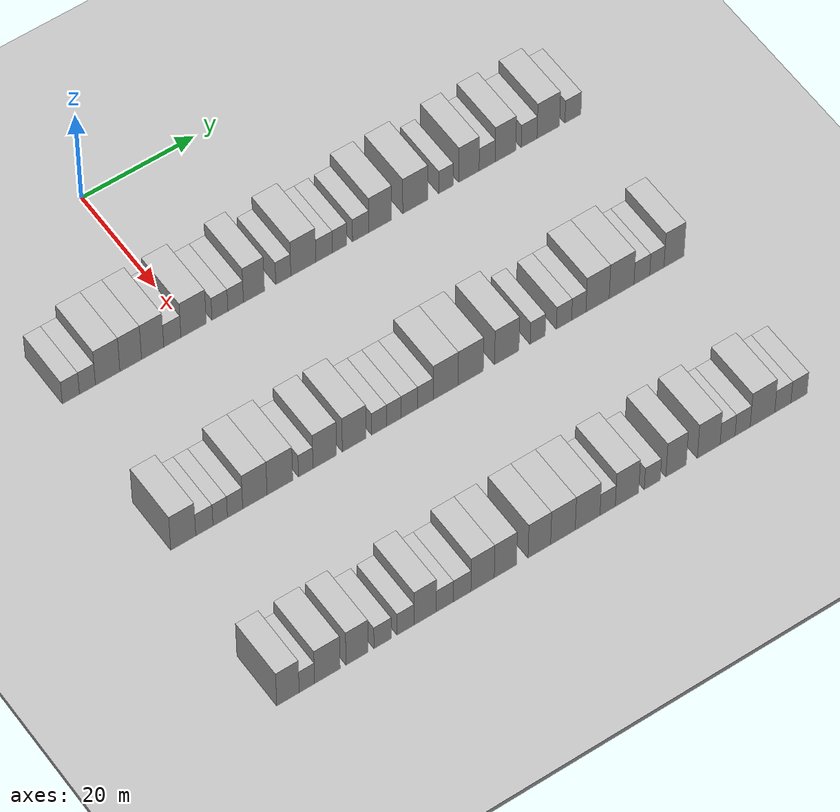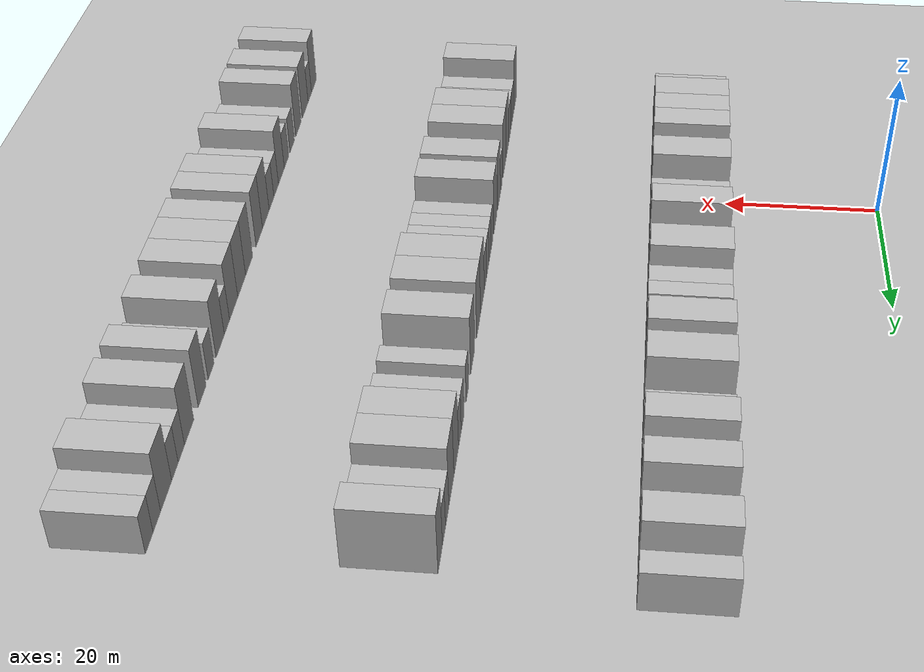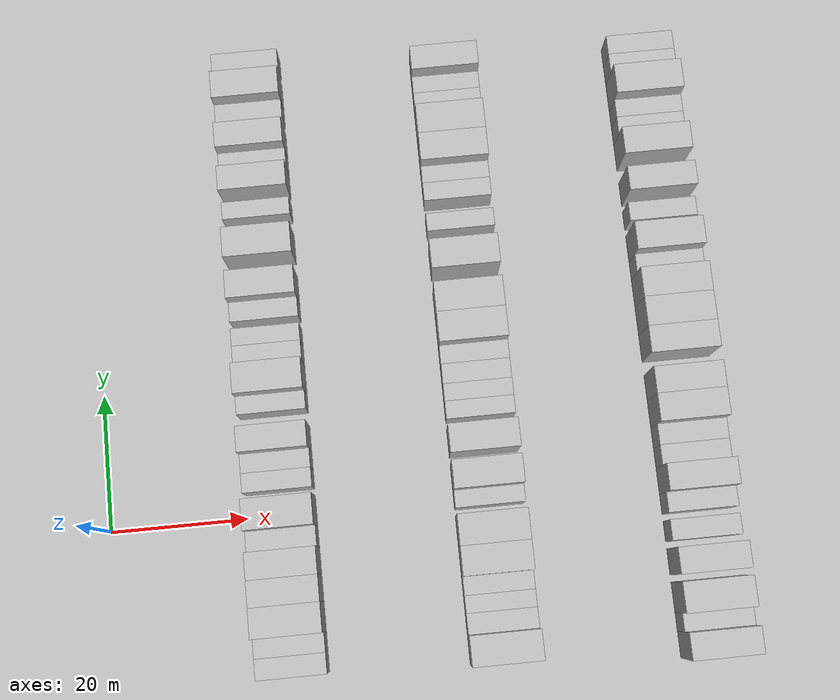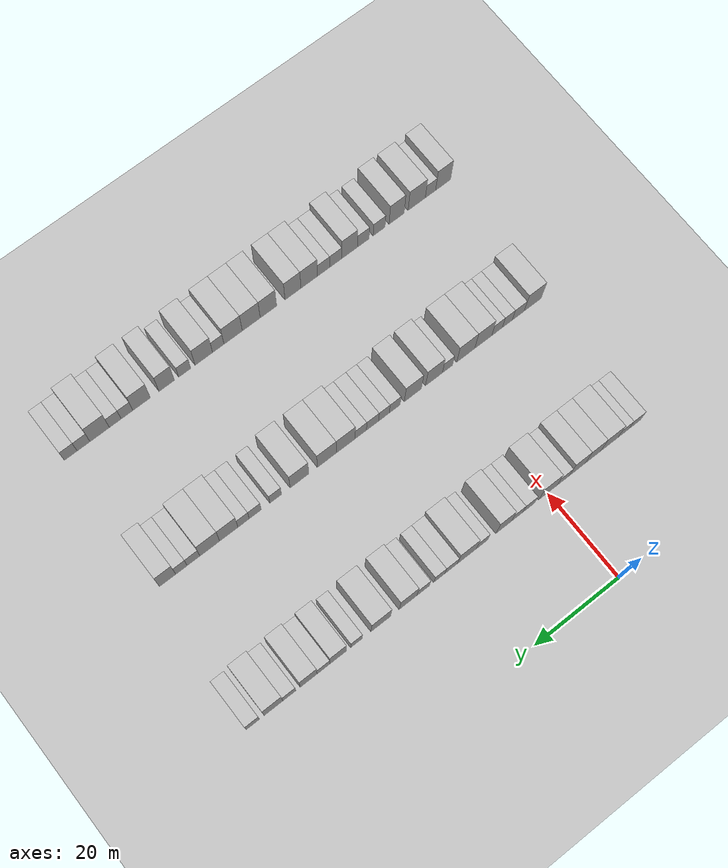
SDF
<sdf version="1.6">
 <world name="default">
  <include><name>ground_plane_1</name><uri>model://HANNAS_ground_plane</uri></include>
  <include>
   <name>ground_plane_2</name>
   <uri>model://HANNAS_ground_plane</uri>
   <pose>100 0 0  0 0 0</pose>
  </include>
  <model name="building_110">
   <static>1</static>
   <pose>25.0000 -21.1894 0 0.000000 0.000000 0.000000</pose>
   <link name="link">
    <pose>0 0 3.00 0 0 0</pose>
    <collision name="collision"><geometry><box><size>10.0000 2.9422 6.0000</size></box></geometry></collision>
    <visual name="visual">
     <cast_shadows>0</cast_shadows>
     <geometry><box><size>10.0000 2.9422 6.0000</size></box></geometry>
     <material>
      <script>
       <uri>model://HANNAS_wall/materials/scripts</uri>
       <uri>model://HANNAS_wall/materials/textures</uri>
       <name>vrc/HANNAS_wall</name>
      </script>
     </material>
    </visual>
   </link>
  </model>
  <model name="building_111">
   <static>1</static>
   <pose>25.0000 -18.3367 0 0.000000 0.000000 0.000000</pose>
   <link name="link">
    <pose>0 0 3.00 0 0 0</pose>
    <collision name="collision"><geometry><box><size>10.0000 2.7631 6.0000</size></box></geometry></collision>
    <visual name="visual">
     <cast_shadows>0</cast_shadows>
     <geometry><box><size>10.0000 2.7631 6.0000</size></box></geometry>
     <material>
      <script>
       <uri>model://HANNAS_wall/materials/scripts</uri>
       <uri>model://HANNAS_wall/materials/textures</uri>
       <name>vrc/HANNAS_wall</name>
      </script>
     </material>
    </visual>
   </link>
  </model>
  <model name="building_112">
   <static>1</static>
   <pose>25.0000 -14.8405 0 0.000000 0.000000 0.000000</pose>
   <link name="link">
    <pose>0 0 4.50 0 0 0</pose>
    <collision name="collision"><geometry><box><size>10.0000 4.2294 9.0000</size></box></geometry></collision>
    <visual name="visual">
     <cast_shadows>0</cast_shadows>
     <geometry><box><size>10.0000 4.2294 9.0000</size></box></geometry>
     <material>
      <script>
       <uri>model://HANNAS_wall/materials/scripts</uri>
       <uri>model://HANNAS_wall/materials/textures</uri>
       <name>vrc/HANNAS_wall</name>
      </script>
     </material>
    </visual>
   </link>
  </model>
  <model name="building_113">
   <static>1</static>
   <pose>25.0000 -10.8490 0 0.000000 0.000000 0.000000</pose>
   <link name="link">
    <pose>0 0 4.50 0 0 0</pose>
    <collision name="collision"><geometry><box><size>10.0000 3.7537 9.0000</size></box></geometry></collision>
    <visual name="visual">
     <cast_shadows>0</cast_shadows>
     <geometry><box><size>10.0000 3.7537 9.0000</size></box></geometry>
     <material>
      <script>
       <uri>model://HANNAS_wall/materials/scripts</uri>
       <uri>model://HANNAS_wall/materials/textures</uri>
       <name>vrc/HANNAS_wall</name>
      </script>
     </material>
    </visual>
   </link>
  </model>
  <model name="building_114">
   <static>1</static>
   <pose>25.0000 -7.0405 0 0.000000 0.000000 0.000000</pose>
   <link name="link">
    <pose>0 0 4.50 0 0 0</pose>
    <collision name="collision"><geometry><box><size>10.0000 3.8632 9.0000</size></box></geometry></collision>
    <visual name="visual">
     <cast_shadows>0</cast_shadows>
     <geometry><box><size>10.0000 3.8632 9.0000</size></box></geometry>
     <material>
      <script>
       <uri>model://HANNAS_wall/materials/scripts</uri>
       <uri>model://HANNAS_wall/materials/textures</uri>
       <name>vrc/HANNAS_wall</name>
      </script>
     </material>
    </visual>
   </link>
  </model>
  <model name="building_115">
   <static>1</static>
   <pose>25.0000 -3.6133 0 0.000000 0.000000 0.000000</pose>
   <link name="link">
    <pose>0 0 3.00 0 0 0</pose>
    <collision name="collision"><geometry><box><size>10.0000 2.9913 6.0000</size></box></geometry></collision>
    <visual name="visual">
     <cast_shadows>0</cast_shadows>
     <geometry><box><size>10.0000 2.9913 6.0000</size></box></geometry>
     <material>
      <script>
       <uri>model://HANNAS_wall/materials/scripts</uri>
       <uri>model://HANNAS_wall/materials/textures</uri>
       <name>vrc/HANNAS_wall</name>
      </script>
     </material>
    </visual>
   </link>
  </model>
  <model name="building_116">
   <static>1</static>
   <pose>25.0000 0.1016 0 0.000000 0.000000 0.000000</pose>
   <link name="link">
    <pose>0 0 4.50 0 0 0</pose>
    <collision name="collision"><geometry><box><size>10.0000 4.4384 9.0000</size></box></geometry></collision>
    <visual name="visual">
     <cast_shadows>0</cast_shadows>
     <geometry><box><size>10.0000 4.4384 9.0000</size></box></geometry>
     <material>
      <script>
       <uri>model://HANNAS_wall/materials/scripts</uri>
       <uri>model://HANNAS_wall/materials/textures</uri>
       <name>vrc/HANNAS_wall</name>
      </script>
     </material>
    </visual>
   </link>
  </model>
  <model name="building_117">
   <static>1</static>
   <pose>25.0000 4.7176 0 0.000000 0.000000 0.000000</pose>
   <link name="link">
    <pose>0 0 3.00 0 0 0</pose>
    <collision name="collision"><geometry><box><size>10.0000 2.7936 6.0000</size></box></geometry></collision>
    <visual name="visual">
     <cast_shadows>0</cast_shadows>
     <geometry><box><size>10.0000 2.7936 6.0000</size></box></geometry>
     <material>
      <script>
       <uri>model://HANNAS_wall/materials/scripts</uri>
       <uri>model://HANNAS_wall/materials/textures</uri>
       <name>vrc/HANNAS_wall</name>
      </script>
     </material>
    </visual>
   </link>
  </model>
  <model name="building_118">
   <static>1</static>
   <pose>25.0000 7.4841 0 0.000000 0.000000 0.000000</pose>
   <link name="link">
    <pose>0 0 3.00 0 0 0</pose>
    <collision name="collision"><geometry><box><size>10.0000 2.7394 6.0000</size></box></geometry></collision>
    <visual name="visual">
     <cast_shadows>0</cast_shadows>
     <geometry><box><size>10.0000 2.7394 6.0000</size></box></geometry>
     <material>
      <script>
       <uri>model://HANNAS_wall/materials/scripts</uri>
       <uri>model://HANNAS_wall/materials/textures</uri>
       <name>vrc/HANNAS_wall</name>
      </script>
     </material>
    </visual>
   </link>
  </model>
  <model name="building_119">
   <static>1</static>
   <pose>25.0000 10.7061 0 0.000000 0.000000 0.000000</pose>
   <link name="link">
    <pose>0 0 4.50 0 0 0</pose>
    <collision name="collision"><geometry><box><size>10.0000 3.7046 9.0000</size></box></geometry></collision>
    <visual name="visual">
     <cast_shadows>0</cast_shadows>
     <geometry><box><size>10.0000 3.7046 9.0000</size></box></geometry>
     <material>
      <script>
       <uri>model://HANNAS_wall/materials/scripts</uri>
       <uri>model://HANNAS_wall/materials/textures</uri>
       <name>vrc/HANNAS_wall</name>
      </script>
     </material>
    </visual>
   </link>
  </model>
  <model name="building_120">
   <static>1</static>
   <pose>25.0000 15.8917 0 0.000000 0.000000 0.000000</pose>
   <link name="link">
    <pose>0 0 3.00 0 0 0</pose>
    <collision name="collision"><geometry><box><size>10.0000 2.6665 6.0000</size></box></geometry></collision>
    <visual name="visual">
     <cast_shadows>0</cast_shadows>
     <geometry><box><size>10.0000 2.6665 6.0000</size></box></geometry>
     <material>
      <script>
       <uri>model://HANNAS_wall/materials/scripts</uri>
       <uri>model://HANNAS_wall/materials/textures</uri>
       <name>vrc/HANNAS_wall</name>
      </script>
     </material>
    </visual>
   </link>
  </model>
  <model name="building_121">
   <static>1</static>
   <pose>25.0000 19.4484 0 0.000000 0.000000 0.000000</pose>
   <link name="link">
    <pose>0 0 4.50 0 0 0</pose>
    <collision name="collision"><geometry><box><size>10.0000 4.4469 9.0000</size></box></geometry></collision>
    <visual name="visual">
     <cast_shadows>0</cast_shadows>
     <geometry><box><size>10.0000 4.4469 9.0000</size></box></geometry>
     <material>
      <script>
       <uri>model://HANNAS_wall/materials/scripts</uri>
       <uri>model://HANNAS_wall/materials/textures</uri>
       <name>vrc/HANNAS_wall</name>
      </script>
     </material>
    </visual>
   </link>
  </model>
  <model name="building_122">
   <static>1</static>
   <pose>25.0000 23.1546 0 0.000000 0.000000 0.000000</pose>
   <link name="link">
    <pose>0 0 3.00 0 0 0</pose>
    <collision name="collision"><geometry><box><size>10.0000 2.9654 6.0000</size></box></geometry></collision>
    <visual name="visual">
     <cast_shadows>0</cast_shadows>
     <geometry><box><size>10.0000 2.9654 6.0000</size></box></geometry>
     <material>
      <script>
       <uri>model://HANNAS_wall/materials/scripts</uri>
       <uri>model://HANNAS_wall/materials/textures</uri>
       <name>vrc/HANNAS_wall</name>
      </script>
     </material>
    </visual>
   </link>
  </model>
  <model name="building_123">
   <static>1</static>
   <pose>25.0000 25.9288 0 0.000000 0.000000 0.000000</pose>
   <link name="link">
    <pose>0 0 3.00 0 0 0</pose>
    <collision name="collision"><geometry><box><size>10.0000 2.5831 6.0000</size></box></geometry></collision>
    <visual name="visual">
     <cast_shadows>0</cast_shadows>
     <geometry><box><size>10.0000 2.5831 6.0000</size></box></geometry>
     <material>
      <script>
       <uri>model://HANNAS_wall/materials/scripts</uri>
       <uri>model://HANNAS_wall/materials/textures</uri>
       <name>vrc/HANNAS_wall</name>
      </script>
     </material>
    </visual>
   </link>
  </model>
  <model name="building_124">
   <static>1</static>
   <pose>25.0000 29.6792 0 0.000000 0.000000 0.000000</pose>
   <link name="link">
    <pose>0 0 3.00 0 0 0</pose>
    <collision name="collision"><geometry><box><size>10.0000 2.9177 6.0000</size></box></geometry></collision>
    <visual name="visual">
     <cast_shadows>0</cast_shadows>
     <geometry><box><size>10.0000 2.9177 6.0000</size></box></geometry>
     <material>
      <script>
       <uri>model://HANNAS_wall/materials/scripts</uri>
       <uri>model://HANNAS_wall/materials/textures</uri>
       <name>vrc/HANNAS_wall</name>
      </script>
     </material>
    </visual>
   </link>
  </model>
  <model name="building_125">
   <static>1</static>
   <pose>25.0000 33.1886 0 0.000000 0.000000 0.000000</pose>
   <link name="link">
    <pose>0 0 4.50 0 0 0</pose>
    <collision name="collision"><geometry><box><size>10.0000 4.1011 9.0000</size></box></geometry></collision>
    <visual name="visual">
     <cast_shadows>0</cast_shadows>
     <geometry><box><size>10.0000 4.1011 9.0000</size></box></geometry>
     <material>
      <script>
       <uri>model://HANNAS_wall/materials/scripts</uri>
       <uri>model://HANNAS_wall/materials/textures</uri>
       <name>vrc/HANNAS_wall</name>
      </script>
     </material>
    </visual>
   </link>
  </model>
  <model name="building_126">
   <static>1</static>
   <pose>25.0000 39.4871 0 0.000000 0.000000 0.000000</pose>
   <link name="link">
    <pose>0 0 4.50 0 0 0</pose>
    <collision name="collision"><geometry><box><size>10.0000 4.4958 9.0000</size></box></geometry></collision>
    <visual name="visual">
     <cast_shadows>0</cast_shadows>
     <geometry><box><size>10.0000 4.4958 9.0000</size></box></geometry>
     <material>
      <script>
       <uri>model://HANNAS_wall/materials/scripts</uri>
       <uri>model://HANNAS_wall/materials/textures</uri>
       <name>vrc/HANNAS_wall</name>
      </script>
     </material>
    </visual>
   </link>
  </model>
  <model name="building_127">
   <static>1</static>
   <pose>25.0000 45.0498 0 0.000000 0.000000 0.000000</pose>
   <link name="link">
    <pose>0 0 3.00 0 0 0</pose>
    <collision name="collision"><geometry><box><size>10.0000 2.6296 6.0000</size></box></geometry></collision>
    <visual name="visual">
     <cast_shadows>0</cast_shadows>
     <geometry><box><size>10.0000 2.6296 6.0000</size></box></geometry>
     <material>
      <script>
       <uri>model://HANNAS_wall/materials/scripts</uri>
       <uri>model://HANNAS_wall/materials/textures</uri>
       <name>vrc/HANNAS_wall</name>
      </script>
     </material>
    </visual>
   </link>
  </model>
  <model name="building_128">
   <static>1</static>
   <pose>25.0000 49.2126 0 0.000000 0.000000 0.000000</pose>
   <link name="link">
    <pose>0 0 4.50 0 0 0</pose>
    <collision name="collision"><geometry><box><size>10.0000 3.6959 9.0000</size></box></geometry></collision>
    <visual name="visual">
     <cast_shadows>0</cast_shadows>
     <geometry><box><size>10.0000 3.6959 9.0000</size></box></geometry>
     <material>
      <script>
       <uri>model://HANNAS_wall/materials/scripts</uri>
       <uri>model://HANNAS_wall/materials/textures</uri>
       <name>vrc/HANNAS_wall</name>
      </script>
     </material>
    </visual>
   </link>
  </model>
  <model name="building_129">
   <static>1</static>
   <pose>25.0000 52.5176 0 0.000000 0.000000 0.000000</pose>
   <link name="link">
    <pose>0 0 3.00 0 0 0</pose>
    <collision name="collision"><geometry><box><size>10.0000 2.9140 6.0000</size></box></geometry></collision>
    <visual name="visual">
     <cast_shadows>0</cast_shadows>
     <geometry><box><size>10.0000 2.9140 6.0000</size></box></geometry>
     <material>
      <script>
       <uri>model://HANNAS_wall/materials/scripts</uri>
       <uri>model://HANNAS_wall/materials/textures</uri>
       <name>vrc/HANNAS_wall</name>
      </script>
     </material>
    </visual>
   </link>
  </model>
  <model name="building_130">
   <static>1</static>
   <pose>25.0000 55.8655 0 0.000000 0.000000 0.000000</pose>
   <link name="link">
    <pose>0 0 4.50 0 0 0</pose>
    <collision name="collision"><geometry><box><size>10.0000 3.7819 9.0000</size></box></geometry></collision>
    <visual name="visual">
     <cast_shadows>0</cast_shadows>
     <geometry><box><size>10.0000 3.7819 9.0000</size></box></geometry>
     <material>
      <script>
       <uri>model://HANNAS_wall/materials/scripts</uri>
       <uri>model://HANNAS_wall/materials/textures</uri>
       <name>vrc/HANNAS_wall</name>
      </script>
     </material>
    </visual>
   </link>
  </model>
  <model name="building_131">
   <static>1</static>
   <pose>25.0000 60.2074 0 0.000000 0.000000 0.000000</pose>
   <link name="link">
    <pose>0 0 3.00 0 0 0</pose>
    <collision name="collision"><geometry><box><size>10.0000 2.9019 6.0000</size></box></geometry></collision>
    <visual name="visual">
     <cast_shadows>0</cast_shadows>
     <geometry><box><size>10.0000 2.9019 6.0000</size></box></geometry>
     <material>
      <script>
       <uri>model://HANNAS_wall/materials/scripts</uri>
       <uri>model://HANNAS_wall/materials/textures</uri>
       <name>vrc/HANNAS_wall</name>
      </script>
     </material>
    </visual>
   </link>
  </model>
  <model name="building_132">
   <static>1</static>
   <pose>25.0000 63.7266 0 0.000000 0.000000 0.000000</pose>
   <link name="link">
    <pose>0 0 4.50 0 0 0</pose>
    <collision name="collision"><geometry><box><size>10.0000 4.1366 9.0000</size></box></geometry></collision>
    <visual name="visual">
     <cast_shadows>0</cast_shadows>
     <geometry><box><size>10.0000 4.1366 9.0000</size></box></geometry>
     <material>
      <script>
       <uri>model://HANNAS_wall/materials/scripts</uri>
       <uri>model://HANNAS_wall/materials/textures</uri>
       <name>vrc/HANNAS_wall</name>
      </script>
     </material>
    </visual>
   </link>
  </model>
  <model name="building_133">
   <static>1</static>
   <pose>25.0000 68.2778 0 0.000000 0.000000 0.000000</pose>
   <link name="link">
    <pose>0 0 3.00 0 0 0</pose>
    <collision name="collision"><geometry><box><size>10.0000 2.9658 6.0000</size></box></geometry></collision>
    <visual name="visual">
     <cast_shadows>0</cast_shadows>
     <geometry><box><size>10.0000 2.9658 6.0000</size></box></geometry>
     <material>
      <script>
       <uri>model://HANNAS_wall/materials/scripts</uri>
       <uri>model://HANNAS_wall/materials/textures</uri>
       <name>vrc/HANNAS_wall</name>
      </script>
     </material>
    </visual>
   </link>
  </model>
  <model name="building_332">
   <static>1</static>
   <pose>55.0000 -21.4617 0 0.000000 0.000000 0.000000</pose>
   <link name="link">
    <pose>0 0 4.50 0 0 0</pose>
    <collision name="collision"><geometry><box><size>10.0000 4.2557 9.0000</size></box></geometry></collision>
    <visual name="visual">
     <cast_shadows>0</cast_shadows>
     <geometry><box><size>10.0000 4.2557 9.0000</size></box></geometry>
     <material>
      <script>
       <uri>model://HANNAS_wall/materials/scripts</uri>
       <uri>model://HANNAS_wall/materials/textures</uri>
       <name>vrc/HANNAS_wall</name>
      </script>
     </material>
    </visual>
   </link>
  </model>
  <model name="building_333">
   <static>1</static>
   <pose>55.0000 -17.8632 0 0.000000 0.000000 0.000000</pose>
   <link name="link">
    <pose>0 0 3.00 0 0 0</pose>
    <collision name="collision"><geometry><box><size>10.0000 2.9413 6.0000</size></box></geometry></collision>
    <visual name="visual">
     <cast_shadows>0</cast_shadows>
     <geometry><box><size>10.0000 2.9413 6.0000</size></box></geometry>
     <material>
      <script>
       <uri>model://HANNAS_wall/materials/scripts</uri>
       <uri>model://HANNAS_wall/materials/textures</uri>
       <name>vrc/HANNAS_wall</name>
      </script>
     </material>
    </visual>
   </link>
  </model>
  <model name="building_334">
   <static>1</static>
   <pose>55.0000 -15.1593 0 0.000000 0.000000 0.000000</pose>
   <link name="link">
    <pose>0 0 3.00 0 0 0</pose>
    <collision name="collision"><geometry><box><size>10.0000 2.4665 6.0000</size></box></geometry></collision>
    <visual name="visual">
     <cast_shadows>0</cast_shadows>
     <geometry><box><size>10.0000 2.4665 6.0000</size></box></geometry>
     <material>
      <script>
       <uri>model://HANNAS_wall/materials/scripts</uri>
       <uri>model://HANNAS_wall/materials/textures</uri>
       <name>vrc/HANNAS_wall</name>
      </script>
     </material>
    </visual>
   </link>
  </model>
  <model name="building_335">
   <static>1</static>
   <pose>55.0000 -12.6138 0 0.000000 0.000000 0.000000</pose>
   <link name="link">
    <pose>0 0 3.00 0 0 0</pose>
    <collision name="collision"><geometry><box><size>10.0000 2.6246 6.0000</size></box></geometry></collision>
    <visual name="visual">
     <cast_shadows>0</cast_shadows>
     <geometry><box><size>10.0000 2.6246 6.0000</size></box></geometry>
     <material>
      <script>
       <uri>model://HANNAS_wall/materials/scripts</uri>
       <uri>model://HANNAS_wall/materials/textures</uri>
       <name>vrc/HANNAS_wall</name>
      </script>
     </material>
    </visual>
   </link>
  </model>
  <model name="building_336">
   <static>1</static>
   <pose>55.0000 -9.2070 0 0.000000 0.000000 0.000000</pose>
   <link name="link">
    <pose>0 0 4.50 0 0 0</pose>
    <collision name="collision"><geometry><box><size>10.0000 4.1890 9.0000</size></box></geometry></collision>
    <visual name="visual">
     <cast_shadows>0</cast_shadows>
     <geometry><box><size>10.0000 4.1890 9.0000</size></box></geometry>
     <material>
      <script>
       <uri>model://HANNAS_wall/materials/scripts</uri>
       <uri>model://HANNAS_wall/materials/textures</uri>
       <name>vrc/HANNAS_wall</name>
      </script>
     </material>
    </visual>
   </link>
  </model>
  <model name="building_337">
   <static>1</static>
   <pose>55.0000 -4.8952 0 0.000000 0.000000 0.000000</pose>
   <link name="link">
    <pose>0 0 4.50 0 0 0</pose>
    <collision name="collision"><geometry><box><size>10.0000 4.4347 9.0000</size></box></geometry></collision>
    <visual name="visual">
     <cast_shadows>0</cast_shadows>
     <geometry><box><size>10.0000 4.4347 9.0000</size></box></geometry>
     <material>
      <script>
       <uri>model://HANNAS_wall/materials/scripts</uri>
       <uri>model://HANNAS_wall/materials/textures</uri>
       <name>vrc/HANNAS_wall</name>
      </script>
     </material>
    </visual>
   </link>
  </model>
  <model name="building_338">
   <static>1</static>
   <pose>55.0000 -0.4247 0 0.000000 0.000000 0.000000</pose>
   <link name="link">
    <pose>0 0 3.00 0 0 0</pose>
    <collision name="collision"><geometry><box><size>10.0000 2.5062 6.0000</size></box></geometry></collision>
    <visual name="visual">
     <cast_shadows>0</cast_shadows>
     <geometry><box><size>10.0000 2.5062 6.0000</size></box></geometry>
     <material>
      <script>
       <uri>model://HANNAS_wall/materials/scripts</uri>
       <uri>model://HANNAS_wall/materials/textures</uri>
       <name>vrc/HANNAS_wall</name>
      </script>
     </material>
    </visual>
   </link>
  </model>
  <model name="building_339">
   <static>1</static>
   <pose>55.0000 2.8761 0 0.000000 0.000000 0.000000</pose>
   <link name="link">
    <pose>0 0 4.50 0 0 0</pose>
    <collision name="collision"><geometry><box><size>10.0000 4.0954 9.0000</size></box></geometry></collision>
    <visual name="visual">
     <cast_shadows>0</cast_shadows>
     <geometry><box><size>10.0000 4.0954 9.0000</size></box></geometry>
     <material>
      <script>
       <uri>model://HANNAS_wall/materials/scripts</uri>
       <uri>model://HANNAS_wall/materials/textures</uri>
       <name>vrc/HANNAS_wall</name>
      </script>
     </material>
    </visual>
   </link>
  </model>
  <model name="building_340">
   <static>1</static>
   <pose>55.0000 7.9847 0 0.000000 0.000000 0.000000</pose>
   <link name="link">
    <pose>0 0 4.50 0 0 0</pose>
    <collision name="collision"><geometry><box><size>10.0000 4.1218 9.0000</size></box></geometry></collision>
    <visual name="visual">
     <cast_shadows>0</cast_shadows>
     <geometry><box><size>10.0000 4.1218 9.0000</size></box></geometry>
     <material>
      <script>
       <uri>model://HANNAS_wall/materials/scripts</uri>
       <uri>model://HANNAS_wall/materials/textures</uri>
       <name>vrc/HANNAS_wall</name>
      </script>
     </material>
    </visual>
   </link>
  </model>
  <model name="building_341">
   <static>1</static>
   <pose>55.0000 12.3545 0 0.000000 0.000000 0.000000</pose>
   <link name="link">
    <pose>0 0 3.00 0 0 0</pose>
    <collision name="collision"><geometry><box><size>10.0000 2.6178 6.0000</size></box></geometry></collision>
    <visual name="visual">
     <cast_shadows>0</cast_shadows>
     <geometry><box><size>10.0000 2.6178 6.0000</size></box></geometry>
     <material>
      <script>
       <uri>model://HANNAS_wall/materials/scripts</uri>
       <uri>model://HANNAS_wall/materials/textures</uri>
       <name>vrc/HANNAS_wall</name>
      </script>
     </material>
    </visual>
   </link>
  </model>
  <model name="building_342">
   <static>1</static>
   <pose>55.0000 14.9325 0 0.000000 0.000000 0.000000</pose>
   <link name="link">
    <pose>0 0 3.00 0 0 0</pose>
    <collision name="collision"><geometry><box><size>10.0000 2.5382 6.0000</size></box></geometry></collision>
    <visual name="visual">
     <cast_shadows>0</cast_shadows>
     <geometry><box><size>10.0000 2.5382 6.0000</size></box></geometry>
     <material>
      <script>
       <uri>model://HANNAS_wall/materials/scripts</uri>
       <uri>model://HANNAS_wall/materials/textures</uri>
       <name>vrc/HANNAS_wall</name>
      </script>
     </material>
    </visual>
   </link>
  </model>
  <model name="building_343">
   <static>1</static>
   <pose>55.0000 17.6532 0 0.000000 0.000000 0.000000</pose>
   <link name="link">
    <pose>0 0 3.00 0 0 0</pose>
    <collision name="collision"><geometry><box><size>10.0000 2.9032 6.0000</size></box></geometry></collision>
    <visual name="visual">
     <cast_shadows>0</cast_shadows>
     <geometry><box><size>10.0000 2.9032 6.0000</size></box></geometry>
     <material>
      <script>
       <uri>model://HANNAS_wall/materials/scripts</uri>
       <uri>model://HANNAS_wall/materials/textures</uri>
       <name>vrc/HANNAS_wall</name>
      </script>
     </material>
    </visual>
   </link>
  </model>
  <model name="building_344">
   <static>1</static>
   <pose>55.0000 20.4656 0 0.000000 0.000000 0.000000</pose>
   <link name="link">
    <pose>0 0 3.00 0 0 0</pose>
    <collision name="collision"><geometry><box><size>10.0000 2.7215 6.0000</size></box></geometry></collision>
    <visual name="visual">
     <cast_shadows>0</cast_shadows>
     <geometry><box><size>10.0000 2.7215 6.0000</size></box></geometry>
     <material>
      <script>
       <uri>model://HANNAS_wall/materials/scripts</uri>
       <uri>model://HANNAS_wall/materials/textures</uri>
       <name>vrc/HANNAS_wall</name>
      </script>
     </material>
    </visual>
   </link>
  </model>
  <model name="building_345">
   <static>1</static>
   <pose>55.0000 24.0425 0 0.000000 0.000000 0.000000</pose>
   <link name="link">
    <pose>0 0 4.50 0 0 0</pose>
    <collision name="collision"><geometry><box><size>10.0000 4.4323 9.0000</size></box></geometry></collision>
    <visual name="visual">
     <cast_shadows>0</cast_shadows>
     <geometry><box><size>10.0000 4.4323 9.0000</size></box></geometry>
     <material>
      <script>
       <uri>model://HANNAS_wall/materials/scripts</uri>
       <uri>model://HANNAS_wall/materials/textures</uri>
       <name>vrc/HANNAS_wall</name>
      </script>
     </material>
    </visual>
   </link>
  </model>
  <model name="building_346">
   <static>1</static>
   <pose>55.0000 28.4852 0 0.000000 0.000000 0.000000</pose>
   <link name="link">
    <pose>0 0 4.50 0 0 0</pose>
    <collision name="collision"><geometry><box><size>10.0000 4.4531 9.0000</size></box></geometry></collision>
    <visual name="visual">
     <cast_shadows>0</cast_shadows>
     <geometry><box><size>10.0000 4.4531 9.0000</size></box></geometry>
     <material>
      <script>
       <uri>model://HANNAS_wall/materials/scripts</uri>
       <uri>model://HANNAS_wall/materials/textures</uri>
       <name>vrc/HANNAS_wall</name>
      </script>
     </material>
    </visual>
   </link>
  </model>
  <model name="building_347">
   <static>1</static>
   <pose>55.0000 34.8869 0 0.000000 0.000000 0.000000</pose>
   <link name="link">
    <pose>0 0 4.50 0 0 0</pose>
    <collision name="collision"><geometry><box><size>10.0000 4.3503 9.0000</size></box></geometry></collision>
    <visual name="visual">
     <cast_shadows>0</cast_shadows>
     <geometry><box><size>10.0000 4.3503 9.0000</size></box></geometry>
     <material>
      <script>
       <uri>model://HANNAS_wall/materials/scripts</uri>
       <uri>model://HANNAS_wall/materials/textures</uri>
       <name>vrc/HANNAS_wall</name>
      </script>
     </material>
    </visual>
   </link>
  </model>
  <model name="building_348">
   <static>1</static>
   <pose>55.0000 40.4093 0 0.000000 0.000000 0.000000</pose>
   <link name="link">
    <pose>0 0 3.00 0 0 0</pose>
    <collision name="collision"><geometry><box><size>10.0000 2.6946 6.0000</size></box></geometry></collision>
    <visual name="visual">
     <cast_shadows>0</cast_shadows>
     <geometry><box><size>10.0000 2.6946 6.0000</size></box></geometry>
     <material>
      <script>
       <uri>model://HANNAS_wall/materials/scripts</uri>
       <uri>model://HANNAS_wall/materials/textures</uri>
       <name>vrc/HANNAS_wall</name>
      </script>
     </material>
    </visual>
   </link>
  </model>
  <model name="building_349">
   <static>1</static>
   <pose>55.0000 45.1313 0 0.000000 0.000000 0.000000</pose>
   <link name="link">
    <pose>0 0 3.00 0 0 0</pose>
    <collision name="collision"><geometry><box><size>10.0000 2.7494 6.0000</size></box></geometry></collision>
    <visual name="visual">
     <cast_shadows>0</cast_shadows>
     <geometry><box><size>10.0000 2.7494 6.0000</size></box></geometry>
     <material>
      <script>
       <uri>model://HANNAS_wall/materials/scripts</uri>
       <uri>model://HANNAS_wall/materials/textures</uri>
       <name>vrc/HANNAS_wall</name>
      </script>
     </material>
    </visual>
   </link>
  </model>
  <model name="building_350">
   <static>1</static>
   <pose>55.0000 47.7929 0 0.000000 0.000000 0.000000</pose>
   <link name="link">
    <pose>0 0 3.00 0 0 0</pose>
    <collision name="collision"><geometry><box><size>10.0000 2.5738 6.0000</size></box></geometry></collision>
    <visual name="visual">
     <cast_shadows>0</cast_shadows>
     <geometry><box><size>10.0000 2.5738 6.0000</size></box></geometry>
     <material>
      <script>
       <uri>model://HANNAS_wall/materials/scripts</uri>
       <uri>model://HANNAS_wall/materials/textures</uri>
       <name>vrc/HANNAS_wall</name>
      </script>
     </material>
    </visual>
   </link>
  </model>
  <model name="building_351">
   <static>1</static>
   <pose>55.0000 51.1819 0 0.000000 0.000000 0.000000</pose>
   <link name="link">
    <pose>0 0 4.50 0 0 0</pose>
    <collision name="collision"><geometry><box><size>10.0000 4.2041 9.0000</size></box></geometry></collision>
    <visual name="visual">
     <cast_shadows>0</cast_shadows>
     <geometry><box><size>10.0000 4.2041 9.0000</size></box></geometry>
     <material>
      <script>
       <uri>model://HANNAS_wall/materials/scripts</uri>
       <uri>model://HANNAS_wall/materials/textures</uri>
       <name>vrc/HANNAS_wall</name>
      </script>
     </material>
    </visual>
   </link>
  </model>
  <model name="building_352">
   <static>1</static>
   <pose>55.0000 55.5310 0 0.000000 0.000000 0.000000</pose>
   <link name="link">
    <pose>0 0 4.50 0 0 0</pose>
    <collision name="collision"><geometry><box><size>10.0000 4.4941 9.0000</size></box></geometry></collision>
    <visual name="visual">
     <cast_shadows>0</cast_shadows>
     <geometry><box><size>10.0000 4.4941 9.0000</size></box></geometry>
     <material>
      <script>
       <uri>model://HANNAS_wall/materials/scripts</uri>
       <uri>model://HANNAS_wall/materials/textures</uri>
       <name>vrc/HANNAS_wall</name>
      </script>
     </material>
    </visual>
   </link>
  </model>
  <model name="building_353">
   <static>1</static>
   <pose>55.0000 59.2122 0 0.000000 0.000000 0.000000</pose>
   <link name="link">
    <pose>0 0 3.00 0 0 0</pose>
    <collision name="collision"><geometry><box><size>10.0000 2.8682 6.0000</size></box></geometry></collision>
    <visual name="visual">
     <cast_shadows>0</cast_shadows>
     <geometry><box><size>10.0000 2.8682 6.0000</size></box></geometry>
     <material>
      <script>
       <uri>model://HANNAS_wall/materials/scripts</uri>
       <uri>model://HANNAS_wall/materials/textures</uri>
       <name>vrc/HANNAS_wall</name>
      </script>
     </material>
    </visual>
   </link>
  </model>
  <model name="building_354">
   <static>1</static>
   <pose>55.0000 61.9445 0 0.000000 0.000000 0.000000</pose>
   <link name="link">
    <pose>0 0 3.00 0 0 0</pose>
    <collision name="collision"><geometry><box><size>10.0000 2.5965 6.0000</size></box></geometry></collision>
    <visual name="visual">
     <cast_shadows>0</cast_shadows>
     <geometry><box><size>10.0000 2.5965 6.0000</size></box></geometry>
     <material>
      <script>
       <uri>model://HANNAS_wall/materials/scripts</uri>
       <uri>model://HANNAS_wall/materials/textures</uri>
       <name>vrc/HANNAS_wall</name>
      </script>
     </material>
    </visual>
   </link>
  </model>
  <model name="building_355">
   <static>1</static>
   <pose>55.0000 65.0645 0 0.000000 0.000000 0.000000</pose>
   <link name="link">
    <pose>0 0 4.50 0 0 0</pose>
    <collision name="collision"><geometry><box><size>10.0000 3.6435 9.0000</size></box></geometry></collision>
    <visual name="visual">
     <cast_shadows>0</cast_shadows>
     <geometry><box><size>10.0000 3.6435 9.0000</size></box></geometry>
     <material>
      <script>
       <uri>model://HANNAS_wall/materials/scripts</uri>
       <uri>model://HANNAS_wall/materials/textures</uri>
       <name>vrc/HANNAS_wall</name>
      </script>
     </material>
    </visual>
   </link>
  </model>
  <model name="building_563">
   <static>1</static>
   <pose>85.0000 -23.7320 0 0.000000 0.000000 0.000000</pose>
   <link name="link">
    <pose>0 0 4.50 0 0 0</pose>
    <collision name="collision"><geometry><box><size>10.0000 3.7872 9.0000</size></box></geometry></collision>
    <visual name="visual">
     <cast_shadows>0</cast_shadows>
     <geometry><box><size>10.0000 3.7872 9.0000</size></box></geometry>
     <material>
      <script>
       <uri>model://HANNAS_wall/materials/scripts</uri>
       <uri>model://HANNAS_wall/materials/textures</uri>
       <name>vrc/HANNAS_wall</name>
      </script>
     </material>
    </visual>
   </link>
  </model>
  <model name="building_564">
   <static>1</static>
   <pose>85.0000 -20.5429 0 0.000000 0.000000 0.000000</pose>
   <link name="link">
    <pose>0 0 3.00 0 0 0</pose>
    <collision name="collision"><geometry><box><size>10.0000 2.5910 6.0000</size></box></geometry></collision>
    <visual name="visual">
     <cast_shadows>0</cast_shadows>
     <geometry><box><size>10.0000 2.5910 6.0000</size></box></geometry>
     <material>
      <script>
       <uri>model://HANNAS_wall/materials/scripts</uri>
       <uri>model://HANNAS_wall/materials/textures</uri>
       <name>vrc/HANNAS_wall</name>
      </script>
     </material>
    </visual>
   </link>
  </model>
  <model name="building_565">
   <static>1</static>
   <pose>85.0000 -17.0867 0 0.000000 0.000000 0.000000</pose>
   <link name="link">
    <pose>0 0 4.50 0 0 0</pose>
    <collision name="collision"><geometry><box><size>10.0000 4.3216 9.0000</size></box></geometry></collision>
    <visual name="visual">
     <cast_shadows>0</cast_shadows>
     <geometry><box><size>10.0000 4.3216 9.0000</size></box></geometry>
     <material>
      <script>
       <uri>model://HANNAS_wall/materials/scripts</uri>
       <uri>model://HANNAS_wall/materials/textures</uri>
       <name>vrc/HANNAS_wall</name>
      </script>
     </material>
    </visual>
   </link>
  </model>
  <model name="building_566">
   <static>1</static>
   <pose>85.0000 -12.0510 0 0.000000 0.000000 0.000000</pose>
   <link name="link">
    <pose>0 0 4.50 0 0 0</pose>
    <collision name="collision"><geometry><box><size>10.0000 3.7496 9.0000</size></box></geometry></collision>
    <visual name="visual">
     <cast_shadows>0</cast_shadows>
     <geometry><box><size>10.0000 3.7496 9.0000</size></box></geometry>
     <material>
      <script>
       <uri>model://HANNAS_wall/materials/scripts</uri>
       <uri>model://HANNAS_wall/materials/textures</uri>
       <name>vrc/HANNAS_wall</name>
      </script>
     </material>
    </visual>
   </link>
  </model>
  <model name="building_567">
   <static>1</static>
   <pose>85.0000 -7.7014 0 0.000000 0.000000 0.000000</pose>
   <link name="link">
    <pose>0 0 3.00 0 0 0</pose>
    <collision name="collision"><geometry><box><size>10.0000 2.9497 6.0000</size></box></geometry></collision>
    <visual name="visual">
     <cast_shadows>0</cast_shadows>
     <geometry><box><size>10.0000 2.9497 6.0000</size></box></geometry>
     <material>
      <script>
       <uri>model://HANNAS_wall/materials/scripts</uri>
       <uri>model://HANNAS_wall/materials/textures</uri>
       <name>vrc/HANNAS_wall</name>
      </script>
     </material>
    </visual>
   </link>
  </model>
  <model name="building_568">
   <static>1</static>
   <pose>85.0000 -3.7793 0 0.000000 0.000000 0.000000</pose>
   <link name="link">
    <pose>0 0 3.00 0 0 0</pose>
    <collision name="collision"><geometry><box><size>10.0000 2.8946 6.0000</size></box></geometry></collision>
    <visual name="visual">
     <cast_shadows>0</cast_shadows>
     <geometry><box><size>10.0000 2.8946 6.0000</size></box></geometry>
     <material>
      <script>
       <uri>model://HANNAS_wall/materials/scripts</uri>
       <uri>model://HANNAS_wall/materials/textures</uri>
       <name>vrc/HANNAS_wall</name>
      </script>
     </material>
    </visual>
   </link>
  </model>
  <model name="building_569">
   <static>1</static>
   <pose>85.0000 -0.4171 0 0.000000 0.000000 0.000000</pose>
   <link name="link">
    <pose>0 0 4.50 0 0 0</pose>
    <collision name="collision"><geometry><box><size>10.0000 3.8299 9.0000</size></box></geometry></collision>
    <visual name="visual">
     <cast_shadows>0</cast_shadows>
     <geometry><box><size>10.0000 3.8299 9.0000</size></box></geometry>
     <material>
      <script>
       <uri>model://HANNAS_wall/materials/scripts</uri>
       <uri>model://HANNAS_wall/materials/textures</uri>
       <name>vrc/HANNAS_wall</name>
      </script>
     </material>
    </visual>
   </link>
  </model>
  <model name="building_570">
   <static>1</static>
   <pose>85.0000 2.9723 0 0.000000 0.000000 0.000000</pose>
   <link name="link">
    <pose>0 0 3.00 0 0 0</pose>
    <collision name="collision"><geometry><box><size>10.0000 2.9487 6.0000</size></box></geometry></collision>
    <visual name="visual">
     <cast_shadows>0</cast_shadows>
     <geometry><box><size>10.0000 2.9487 6.0000</size></box></geometry>
     <material>
      <script>
       <uri>model://HANNAS_wall/materials/scripts</uri>
       <uri>model://HANNAS_wall/materials/textures</uri>
       <name>vrc/HANNAS_wall</name>
      </script>
     </material>
    </visual>
   </link>
  </model>
  <model name="building_571">
   <static>1</static>
   <pose>85.0000 5.9461 0 0.000000 0.000000 0.000000</pose>
   <link name="link">
    <pose>0 0 3.00 0 0 0</pose>
    <collision name="collision"><geometry><box><size>10.0000 2.9990 6.0000</size></box></geometry></collision>
    <visual name="visual">
     <cast_shadows>0</cast_shadows>
     <geometry><box><size>10.0000 2.9990 6.0000</size></box></geometry>
     <material>
      <script>
       <uri>model://HANNAS_wall/materials/scripts</uri>
       <uri>model://HANNAS_wall/materials/textures</uri>
       <name>vrc/HANNAS_wall</name>
      </script>
     </material>
    </visual>
   </link>
  </model>
  <model name="building_572">
   <static>1</static>
   <pose>85.0000 9.4667 0 0.000000 0.000000 0.000000</pose>
   <link name="link">
    <pose>0 0 4.50 0 0 0</pose>
    <collision name="collision"><geometry><box><size>10.0000 4.0422 9.0000</size></box></geometry></collision>
    <visual name="visual">
     <cast_shadows>0</cast_shadows>
     <geometry><box><size>10.0000 4.0422 9.0000</size></box></geometry>
     <material>
      <script>
       <uri>model://HANNAS_wall/materials/scripts</uri>
       <uri>model://HANNAS_wall/materials/textures</uri>
       <name>vrc/HANNAS_wall</name>
      </script>
     </material>
    </visual>
   </link>
  </model>
  <model name="building_573">
   <static>1</static>
   <pose>85.0000 13.4177 0 0.000000 0.000000 0.000000</pose>
   <link name="link">
    <pose>0 0 4.50 0 0 0</pose>
    <collision name="collision"><geometry><box><size>10.0000 3.8598 9.0000</size></box></geometry></collision>
    <visual name="visual">
     <cast_shadows>0</cast_shadows>
     <geometry><box><size>10.0000 3.8598 9.0000</size></box></geometry>
     <material>
      <script>
       <uri>model://HANNAS_wall/materials/scripts</uri>
       <uri>model://HANNAS_wall/materials/textures</uri>
       <name>vrc/HANNAS_wall</name>
      </script>
     </material>
    </visual>
   </link>
  </model>
  <model name="building_574">
   <static>1</static>
   <pose>85.0000 19.3179 0 0.000000 0.000000 0.000000</pose>
   <link name="link">
    <pose>0 0 4.50 0 0 0</pose>
    <collision name="collision"><geometry><box><size>10.0000 3.9405 9.0000</size></box></geometry></collision>
    <visual name="visual">
     <cast_shadows>0</cast_shadows>
     <geometry><box><size>10.0000 3.9405 9.0000</size></box></geometry>
     <material>
      <script>
       <uri>model://HANNAS_wall/materials/scripts</uri>
       <uri>model://HANNAS_wall/materials/textures</uri>
       <name>vrc/HANNAS_wall</name>
      </script>
     </material>
    </visual>
   </link>
  </model>
  <model name="building_575">
   <static>1</static>
   <pose>85.0000 23.4398 0 0.000000 0.000000 0.000000</pose>
   <link name="link">
    <pose>0 0 4.50 0 0 0</pose>
    <collision name="collision"><geometry><box><size>10.0000 4.3034 9.0000</size></box></geometry></collision>
    <visual name="visual">
     <cast_shadows>0</cast_shadows>
     <geometry><box><size>10.0000 4.3034 9.0000</size></box></geometry>
     <material>
      <script>
       <uri>model://HANNAS_wall/materials/scripts</uri>
       <uri>model://HANNAS_wall/materials/textures</uri>
       <name>vrc/HANNAS_wall</name>
      </script>
     </material>
    </visual>
   </link>
  </model>
  <model name="building_576">
   <static>1</static>
   <pose>85.0000 27.7687 0 0.000000 0.000000 0.000000</pose>
   <link name="link">
    <pose>0 0 4.50 0 0 0</pose>
    <collision name="collision"><geometry><box><size>10.0000 4.3543 9.0000</size></box></geometry></collision>
    <visual name="visual">
     <cast_shadows>0</cast_shadows>
     <geometry><box><size>10.0000 4.3543 9.0000</size></box></geometry>
     <material>
      <script>
       <uri>model://HANNAS_wall/materials/scripts</uri>
       <uri>model://HANNAS_wall/materials/textures</uri>
       <name>vrc/HANNAS_wall</name>
      </script>
     </material>
    </visual>
   </link>
  </model>
  <model name="building_577">
   <static>1</static>
   <pose>85.0000 31.2930 0 0.000000 0.000000 0.000000</pose>
   <link name="link">
    <pose>0 0 3.00 0 0 0</pose>
    <collision name="collision"><geometry><box><size>10.0000 2.6944 6.0000</size></box></geometry></collision>
    <visual name="visual">
     <cast_shadows>0</cast_shadows>
     <geometry><box><size>10.0000 2.6944 6.0000</size></box></geometry>
     <material>
      <script>
       <uri>model://HANNAS_wall/materials/scripts</uri>
       <uri>model://HANNAS_wall/materials/textures</uri>
       <name>vrc/HANNAS_wall</name>
      </script>
     </material>
    </visual>
   </link>
  </model>
  <model name="building_578">
   <static>1</static>
   <pose>85.0000 34.7042 0 0.000000 0.000000 0.000000</pose>
   <link name="link">
    <pose>0 0 4.50 0 0 0</pose>
    <collision name="collision"><geometry><box><size>10.0000 4.1280 9.0000</size></box></geometry></collision>
    <visual name="visual">
     <cast_shadows>0</cast_shadows>
     <geometry><box><size>10.0000 4.1280 9.0000</size></box></geometry>
     <material>
      <script>
       <uri>model://HANNAS_wall/materials/scripts</uri>
       <uri>model://HANNAS_wall/materials/textures</uri>
       <name>vrc/HANNAS_wall</name>
      </script>
     </material>
    </visual>
   </link>
  </model>
  <model name="building_579">
   <static>1</static>
   <pose>85.0000 39.1847 0 0.000000 0.000000 0.000000</pose>
   <link name="link">
    <pose>0 0 3.00 0 0 0</pose>
    <collision name="collision"><geometry><box><size>10.0000 2.8329 6.0000</size></box></geometry></collision>
    <visual name="visual">
     <cast_shadows>0</cast_shadows>
     <geometry><box><size>10.0000 2.8329 6.0000</size></box></geometry>
     <material>
      <script>
       <uri>model://HANNAS_wall/materials/scripts</uri>
       <uri>model://HANNAS_wall/materials/textures</uri>
       <name>vrc/HANNAS_wall</name>
      </script>
     </material>
    </visual>
   </link>
  </model>
  <model name="building_580">
   <static>1</static>
   <pose>85.0000 43.4057 0 0.000000 0.000000 0.000000</pose>
   <link name="link">
    <pose>0 0 4.50 0 0 0</pose>
    <collision name="collision"><geometry><box><size>10.0000 3.6091 9.0000</size></box></geometry></collision>
    <visual name="visual">
     <cast_shadows>0</cast_shadows>
     <geometry><box><size>10.0000 3.6091 9.0000</size></box></geometry>
     <material>
      <script>
       <uri>model://HANNAS_wall/materials/scripts</uri>
       <uri>model://HANNAS_wall/materials/textures</uri>
       <name>vrc/HANNAS_wall</name>
      </script>
     </material>
    </visual>
   </link>
  </model>
  <model name="building_581">
   <static>1</static>
   <pose>85.0000 49.2414 0 0.000000 0.000000 0.000000</pose>
   <link name="link">
    <pose>0 0 4.50 0 0 0</pose>
    <collision name="collision"><geometry><box><size>10.0000 4.0623 9.0000</size></box></geometry></collision>
    <visual name="visual">
     <cast_shadows>0</cast_shadows>
     <geometry><box><size>10.0000 4.0623 9.0000</size></box></geometry>
     <material>
      <script>
       <uri>model://HANNAS_wall/materials/scripts</uri>
       <uri>model://HANNAS_wall/materials/textures</uri>
       <name>vrc/HANNAS_wall</name>
      </script>
     </material>
    </visual>
   </link>
  </model>
  <model name="building_582">
   <static>1</static>
   <pose>85.0000 52.6167 0 0.000000 0.000000 0.000000</pose>
   <link name="link">
    <pose>0 0 3.00 0 0 0</pose>
    <collision name="collision"><geometry><box><size>10.0000 2.6882 6.0000</size></box></geometry></collision>
    <visual name="visual">
     <cast_shadows>0</cast_shadows>
     <geometry><box><size>10.0000 2.6882 6.0000</size></box></geometry>
     <material>
      <script>
       <uri>model://HANNAS_wall/materials/scripts</uri>
       <uri>model://HANNAS_wall/materials/textures</uri>
       <name>vrc/HANNAS_wall</name>
      </script>
     </material>
    </visual>
   </link>
  </model>
  <model name="building_583">
   <static>1</static>
   <pose>85.0000 55.3148 0 0.000000 0.000000 0.000000</pose>
   <link name="link">
    <pose>0 0 3.00 0 0 0</pose>
    <collision name="collision"><geometry><box><size>10.0000 2.7079 6.0000</size></box></geometry></collision>
    <visual name="visual">
     <cast_shadows>0</cast_shadows>
     <geometry><box><size>10.0000 2.7079 6.0000</size></box></geometry>
     <material>
      <script>
       <uri>model://HANNAS_wall/materials/scripts</uri>
       <uri>model://HANNAS_wall/materials/textures</uri>
       <name>vrc/HANNAS_wall</name>
      </script>
     </material>
    </visual>
   </link>
  </model>
  <model name="building_584">
   <static>1</static>
   <pose>85.0000 58.8860 0 0.000000 0.000000 0.000000</pose>
   <link name="link">
    <pose>0 0 4.50 0 0 0</pose>
    <collision name="collision"><geometry><box><size>10.0000 4.4346 9.0000</size></box></geometry></collision>
    <visual name="visual">
     <cast_shadows>0</cast_shadows>
     <geometry><box><size>10.0000 4.4346 9.0000</size></box></geometry>
     <material>
      <script>
       <uri>model://HANNAS_wall/materials/scripts</uri>
       <uri>model://HANNAS_wall/materials/textures</uri>
       <name>vrc/HANNAS_wall</name>
      </script>
     </material>
    </visual>
   </link>
  </model>
  <model name="building_585">
   <static>1</static>
   <pose>85.0000 62.5658 0 0.000000 0.000000 0.000000</pose>
   <link name="link">
    <pose>0 0 3.00 0 0 0</pose>
    <collision name="collision"><geometry><box><size>10.0000 2.9248 6.0000</size></box></geometry></collision>
    <visual name="visual">
     <cast_shadows>0</cast_shadows>
     <geometry><box><size>10.0000 2.9248 6.0000</size></box></geometry>
     <material>
      <script>
       <uri>model://HANNAS_wall/materials/scripts</uri>
       <uri>model://HANNAS_wall/materials/textures</uri>
       <name>vrc/HANNAS_wall</name>
      </script>
     </material>
    </visual>
   </link>
  </model>
  <model name="building_586">
   <static>1</static>
   <pose>85.0000 65.4820 0 0.000000 0.000000 0.000000</pose>
   <link name="link">
    <pose>0 0 3.00 0 0 0</pose>
    <collision name="collision"><geometry><box><size>10.0000 2.9076 6.0000</size></box></geometry></collision>
    <visual name="visual">
     <cast_shadows>0</cast_shadows>
     <geometry><box><size>10.0000 2.9076 6.0000</size></box></geometry>
     <material>
      <script>
       <uri>model://HANNAS_wall/materials/scripts</uri>
       <uri>model://HANNAS_wall/materials/textures</uri>
       <name>vrc/HANNAS_wall</name>
      </script>
     </material>
    </visual>
   </link>
  </model>
 </world>
</sdf>
